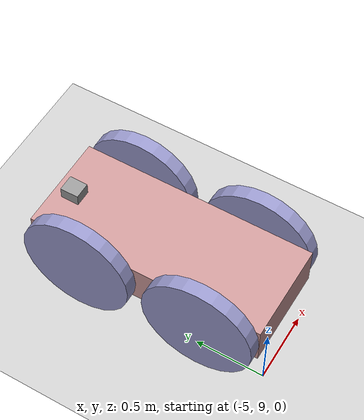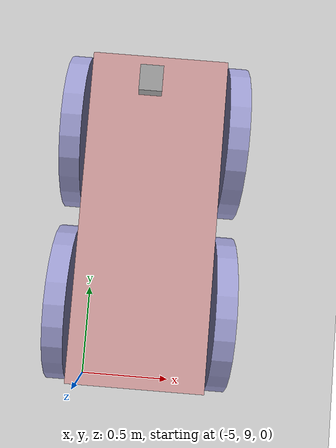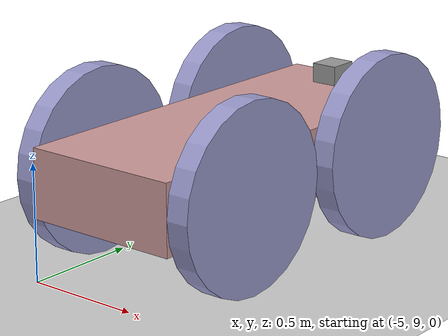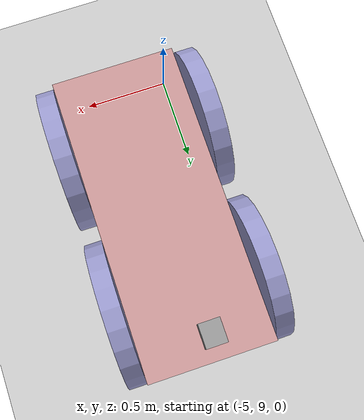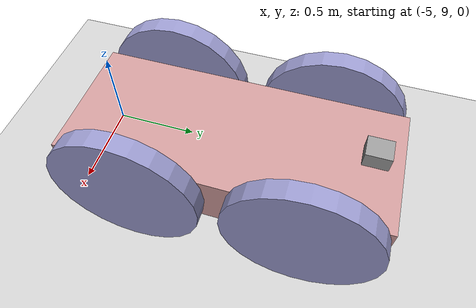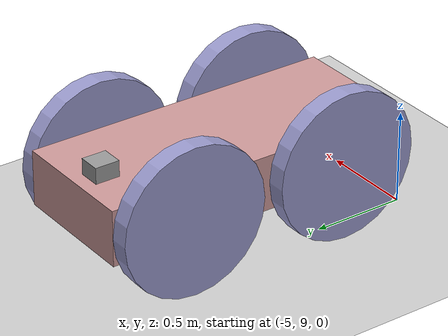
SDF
<sdf version="1.6">
 <world name="default">
  <model name="ground_plane">
   <static>1</static>
   <link name="link">
    <collision name="collision">
     <geometry><plane><normal>0 0 1</normal><size>100 100</size></plane></geometry>
     <surface>
      <contact><collide_bitmask>65535</collide_bitmask></contact>
      <friction><ode><mu>100</mu><mu2>50</mu2></ode></friction>
     </surface>
    </collision>
    <visual name="visual">
     <cast_shadows>0</cast_shadows>
     <geometry><plane><normal>0 0 1</normal><size>100 100</size></plane></geometry>
     <material>
      <script><uri>file://media/materials/scripts/gazebo.material</uri><name>Gazebo/Grey</name></script>
     </material>
    </visual>
   </link>
  </model>
  <model name="Robot">
   <link name="link_0">
    <pose>0.00675 -0.118334 -0.032195 0 -0 0</pose>
    <inertial>
     <mass>0.306123</mass>
     <inertia>
      <ixx>0.0616903</ixx>
      <ixy>0</ixy>
      <ixz>0</ixz>
      <iyy>0.0154129</iyy>
      <iyz>0</iyz>
      <izz>0.0732404</izz>
     </inertia>
    </inertial>
    <visual name="visual">
     <geometry><box><size>0.7 1.7 0.3</size></box></geometry>
     <material>
      <lighting>1</lighting>
      <script><uri>file://media/materials/scripts/gazebo.material</uri><name>Gazebo/Grey</name></script>
      <shader type="pixel"><normal_map>__default__</normal_map></shader>
      <ambient>0.4 0.2 0.2 1</ambient>
      <diffuse>0.8 0.6 0.6 1</diffuse>
      <specular>0.11 0 0 1</specular>
      <emissive>0 0 0 1</emissive>
     </material>
    </visual>
    <collision name="collision">
     <geometry><box><size>0.7 1.7 0.3</size></box></geometry>
     <surface>
      <friction>
       <ode><mu>1</mu><mu2>1</mu2><fdir1>0 0 0</fdir1><slip1>0</slip1><slip2>0</slip2></ode>
       <torsional>
        <coefficient>1</coefficient>
        <patch_radius>0</patch_radius>
        <surface_radius>0</surface_radius>
        <use_patch_radius>1</use_patch_radius>
        <ode><slip>0</slip></ode>
       </torsional>
      </friction>
      <bounce><restitution_coefficient>0</restitution_coefficient><threshold>1e+06</threshold></bounce>
      <contact>
       <collide_without_contact>0</collide_without_contact>
       <collide_without_contact_bitmask>1</collide_without_contact_bitmask>
       <collide_bitmask>1</collide_bitmask>
       <ode>
        <soft_cfm>0</soft_cfm>
        <soft_erp>0.2</soft_erp>
        <kp>1e+13</kp>
        <kd>1</kd>
        <max_vel>0.01</max_vel>
        <min_depth>0</min_depth>
       </ode>
       <bullet>
        <split_impulse>1</split_impulse>
        <split_impulse_penetration_threshold>-0.01</split_impulse_penetration_threshold>
        <soft_cfm>0</soft_cfm>
        <soft_erp>0.2</soft_erp>
        <kp>1e+13</kp>
        <kd>1</kd>
       </bullet>
      </contact>
     </surface>
    </collision>
   </link>
   <link name="link_1_clone">
    <pose>-0.393289 -0.568334 -0.032195 0 1.5707 0</pose>
    <inertial>
     <mass>1</mass>
     <inertia><ixx>0.145833</ixx><ixy>0</ixy><ixz>0</ixz><iyy>0.145833</iyy><iyz>0</iyz><izz>0.125</izz></inertia>
    </inertial>
    <visual name="visual">
     <geometry><cylinder><radius>0.4</radius><length>0.1</length></cylinder></geometry>
     <material>
      <lighting>1</lighting>
      <script><uri>file://media/materials/scripts/gazebo.material</uri><name>Gazebo/Grey</name></script>
      <shader type="pixel"><normal_map>__default__</normal_map></shader>
      <ambient>0.2 0.2 0.4 1</ambient>
      <diffuse>0.6 0.6 0.8 1</diffuse>
      <specular>0 0 0.11 1</specular>
      <emissive>0 0 0 1</emissive>
     </material>
    </visual>
    <collision name="collision">
     <geometry><cylinder><radius>0.4</radius><length>0.1</length></cylinder></geometry>
     <surface>
      <friction>
       <ode><mu>1</mu><mu2>1</mu2><fdir1>0 0 0</fdir1><slip1>0</slip1><slip2>0</slip2></ode>
       <torsional>
        <coefficient>1</coefficient>
        <patch_radius>0</patch_radius>
        <surface_radius>0</surface_radius>
        <use_patch_radius>1</use_patch_radius>
        <ode><slip>0</slip></ode>
       </torsional>
      </friction>
      <bounce><restitution_coefficient>0</restitution_coefficient><threshold>1e+06</threshold></bounce>
      <contact>
       <collide_without_contact>0</collide_without_contact>
       <collide_without_contact_bitmask>1</collide_without_contact_bitmask>
       <collide_bitmask>1</collide_bitmask>
       <ode>
        <soft_cfm>0</soft_cfm>
        <soft_erp>0.2</soft_erp>
        <kp>1e+13</kp>
        <kd>1</kd>
        <max_vel>0.01</max_vel>
        <min_depth>0</min_depth>
       </ode>
       <bullet>
        <split_impulse>1</split_impulse>
        <split_impulse_penetration_threshold>-0.01</split_impulse_penetration_threshold>
        <soft_cfm>0</soft_cfm>
        <soft_erp>0.2</soft_erp>
        <kp>1e+13</kp>
        <kd>1</kd>
       </bullet>
      </contact>
     </surface>
    </collision>
   </link>
   <link name="link_1_clone_0">
    <pose>-0.393289 0.331666 -0.032195 0 1.5707 0</pose>
    <inertial>
     <mass>1</mass>
     <inertia><ixx>0.145833</ixx><ixy>0</ixy><ixz>0</ixz><iyy>0.145833</iyy><iyz>0</iyz><izz>0.125</izz></inertia>
    </inertial>
    <visual name="visual">
     <geometry><cylinder><radius>0.4</radius><length>0.1</length></cylinder></geometry>
     <material>
      <lighting>1</lighting>
      <script><uri>file://media/materials/scripts/gazebo.material</uri><name>Gazebo/Grey</name></script>
      <shader type="pixel"><normal_map>__default__</normal_map></shader>
      <ambient>0.2 0.2 0.4 1</ambient>
      <diffuse>0.6 0.6 0.8 1</diffuse>
      <specular>0 0 0.11 1</specular>
      <emissive>0 0 0 1</emissive>
     </material>
    </visual>
    <collision name="collision">
     <geometry><cylinder><radius>0.4</radius><length>0.1</length></cylinder></geometry>
     <surface>
      <friction>
       <ode><mu>1</mu><mu2>1</mu2><fdir1>0 0 0</fdir1><slip1>0</slip1><slip2>0</slip2></ode>
       <torsional>
        <coefficient>1</coefficient>
        <patch_radius>0</patch_radius>
        <surface_radius>0</surface_radius>
        <use_patch_radius>1</use_patch_radius>
        <ode><slip>0</slip></ode>
       </torsional>
      </friction>
      <bounce><restitution_coefficient>0</restitution_coefficient><threshold>1e+06</threshold></bounce>
      <contact>
       <collide_without_contact>0</collide_without_contact>
       <collide_without_contact_bitmask>1</collide_without_contact_bitmask>
       <collide_bitmask>1</collide_bitmask>
       <ode>
        <soft_cfm>0</soft_cfm>
        <soft_erp>0.2</soft_erp>
        <kp>1e+13</kp>
        <kd>1</kd>
        <max_vel>0.01</max_vel>
        <min_depth>0</min_depth>
       </ode>
       <bullet>
        <split_impulse>1</split_impulse>
        <split_impulse_penetration_threshold>-0.01</split_impulse_penetration_threshold>
        <soft_cfm>0</soft_cfm>
        <soft_erp>0.2</soft_erp>
        <kp>1e+13</kp>
        <kd>1</kd>
       </bullet>
      </contact>
     </surface>
    </collision>
   </link>
   <link name="link_1_clone_1">
    <pose>0.406789 -0.568334 -0.032195 0 1.5707 0</pose>
    <inertial>
     <mass>1</mass>
     <inertia><ixx>0.145833</ixx><ixy>0</ixy><ixz>0</ixz><iyy>0.145833</iyy><iyz>0</iyz><izz>0.125</izz></inertia>
    </inertial>
    <visual name="visual">
     <geometry><cylinder><radius>0.4</radius><length>0.1</length></cylinder></geometry>
     <material>
      <lighting>1</lighting>
      <script><uri>file://media/materials/scripts/gazebo.material</uri><name>Gazebo/Grey</name></script>
      <shader type="pixel"><normal_map>__default__</normal_map></shader>
      <ambient>0.2 0.2 0.4 1</ambient>
      <diffuse>0.6 0.6 0.8 1</diffuse>
      <specular>0 0 0.11 1</specular>
      <emissive>0 0 0 1</emissive>
     </material>
    </visual>
    <collision name="collision">
     <geometry><cylinder><radius>0.4</radius><length>0.1</length></cylinder></geometry>
     <surface>
      <friction>
       <ode><mu>1</mu><mu2>1</mu2><fdir1>0 0 0</fdir1><slip1>0</slip1><slip2>0</slip2></ode>
       <torsional>
        <coefficient>1</coefficient>
        <patch_radius>0</patch_radius>
        <surface_radius>0</surface_radius>
        <use_patch_radius>1</use_patch_radius>
        <ode><slip>0</slip></ode>
       </torsional>
      </friction>
      <bounce><restitution_coefficient>0</restitution_coefficient><threshold>1e+06</threshold></bounce>
      <contact>
       <collide_without_contact>0</collide_without_contact>
       <collide_without_contact_bitmask>1</collide_without_contact_bitmask>
       <collide_bitmask>1</collide_bitmask>
       <ode>
        <soft_cfm>0</soft_cfm>
        <soft_erp>0.2</soft_erp>
        <kp>1e+13</kp>
        <kd>1</kd>
        <max_vel>0.01</max_vel>
        <min_depth>0</min_depth>
       </ode>
       <bullet>
        <split_impulse>1</split_impulse>
        <split_impulse_penetration_threshold>-0.01</split_impulse_penetration_threshold>
        <soft_cfm>0</soft_cfm>
        <soft_erp>0.2</soft_erp>
        <kp>1e+13</kp>
        <kd>1</kd>
       </bullet>
      </contact>
     </surface>
    </collision>
   </link>
   <link name="link_1_clone_2">
    <pose>0.406789 0.331666 -0.032195 0 1.5707 0</pose>
    <inertial>
     <mass>1</mass>
     <inertia><ixx>0.145833</ixx><ixy>0</ixy><ixz>0</ixz><iyy>0.145833</iyy><iyz>0</iyz><izz>0.125</izz></inertia>
    </inertial>
    <visual name="visual">
     <geometry><cylinder><radius>0.4</radius><length>0.1</length></cylinder></geometry>
     <material>
      <lighting>1</lighting>
      <script><uri>file://media/materials/scripts/gazebo.material</uri><name>Gazebo/Grey</name></script>
      <shader type="pixel"><normal_map>__default__</normal_map></shader>
      <ambient>0.2 0.2 0.4 1</ambient>
      <diffuse>0.6 0.6 0.8 1</diffuse>
      <specular>0 0 0.11 1</specular>
      <emissive>0 0 0 1</emissive>
     </material>
    </visual>
    <collision name="collision">
     <geometry><cylinder><radius>0.4</radius><length>0.1</length></cylinder></geometry>
     <surface>
      <friction>
       <ode><mu>1</mu><mu2>1</mu2><fdir1>0 0 0</fdir1><slip1>0</slip1><slip2>0</slip2></ode>
       <torsional>
        <coefficient>1</coefficient>
        <patch_radius>0</patch_radius>
        <surface_radius>0</surface_radius>
        <use_patch_radius>1</use_patch_radius>
        <ode><slip>0</slip></ode>
       </torsional>
      </friction>
      <bounce><restitution_coefficient>0</restitution_coefficient><threshold>1e+06</threshold></bounce>
      <contact>
       <collide_without_contact>0</collide_without_contact>
       <collide_without_contact_bitmask>1</collide_without_contact_bitmask>
       <collide_bitmask>1</collide_bitmask>
       <ode>
        <soft_cfm>0</soft_cfm>
        <soft_erp>0.2</soft_erp>
        <kp>1e+13</kp>
        <kd>1</kd>
        <max_vel>0.01</max_vel>
        <min_depth>0</min_depth>
       </ode>
       <bullet>
        <split_impulse>1</split_impulse>
        <split_impulse_penetration_threshold>-0.01</split_impulse_penetration_threshold>
        <soft_cfm>0</soft_cfm>
        <soft_erp>0.2</soft_erp>
        <kp>1e+13</kp>
        <kd>1</kd>
       </bullet>
      </contact>
     </surface>
    </collision>
   </link>
   <link name="link_2">
    <pose>-0.033751 0.591666 0.160974 0 -0 0</pose>
    <inertial>
     <mass>0.00134124</mass>
     <inertia>
      <ixx>2.76975e-06</ixx>
      <ixy>0</ixy>
      <ixz>0</ixz>
      <iyy>2.38931e-06</iyy>
      <iyz>0</iyz>
      <izz>3.49279e-06</izz>
     </inertia>
    </inertial>
    <visual name="visual">
     <geometry><box><size>0.117996 0.131631 0.086336</size></box></geometry>
     <material>
      <lighting>1</lighting>
      <script><uri>file://media/materials/scripts/gazebo.material</uri><name>Gazebo/Grey</name></script>
      <shader type="pixel"/>
      <ambient>0.3 0.3 0.3 1</ambient>
      <diffuse>0.7 0.7 0.7 1</diffuse>
      <specular>0.01 0.01 0.01 1</specular>
      <emissive>0 0 0 1</emissive>
     </material>
    </visual>
    <collision name="collision">
     <geometry><box><size>0.117996 0.131631 0.086336</size></box></geometry>
     <surface>
      <friction>
       <ode><mu>1</mu><mu2>1</mu2><fdir1>0 0 0</fdir1><slip1>0</slip1><slip2>0</slip2></ode>
       <torsional>
        <coefficient>1</coefficient>
        <patch_radius>0</patch_radius>
        <surface_radius>0</surface_radius>
        <use_patch_radius>1</use_patch_radius>
        <ode><slip>0</slip></ode>
       </torsional>
      </friction>
      <bounce><restitution_coefficient>0</restitution_coefficient><threshold>1e+06</threshold></bounce>
      <contact>
       <collide_without_contact>0</collide_without_contact>
       <collide_without_contact_bitmask>1</collide_without_contact_bitmask>
       <collide_bitmask>1</collide_bitmask>
       <ode>
        <soft_cfm>0</soft_cfm>
        <soft_erp>0.2</soft_erp>
        <kp>1e+13</kp>
        <kd>1</kd>
        <max_vel>0.01</max_vel>
        <min_depth>0</min_depth>
       </ode>
       <bullet>
        <split_impulse>1</split_impulse>
        <split_impulse_penetration_threshold>-0.01</split_impulse_penetration_threshold>
        <soft_cfm>0</soft_cfm>
        <soft_erp>0.2</soft_erp>
        <kp>1e+13</kp>
        <kd>1</kd>
       </bullet>
      </contact>
     </surface>
    </collision>
   </link>
   <joint name="link_0_JOINT_2" type="revolute">
    <parent>link_0</parent>
    <child>link_1_clone_0</child>
    <axis>
     <xyz>0 0 1</xyz>
     <use_parent_model_frame>0</use_parent_model_frame>
     <limit>
      <lower>-1.79769e+308</lower>
      <upper>1.79769e+308</upper>
      <effort>-1</effort>
      <velocity>-1</velocity>
     </limit>
     <dynamics>
      <spring_reference>0</spring_reference>
      <spring_stiffness>0</spring_stiffness>
      <damping>0</damping>
     </dynamics>
    </axis>
    <physics>
     <ode><limit><cfm>0</cfm><erp>0.2</erp></limit><suspension><cfm>0</cfm><erp>0.2</erp></suspension></ode>
    </physics>
   </joint>
   <joint name="link_0_JOINT_3" type="revolute">
    <parent>link_0</parent>
    <child>link_1_clone</child>
    <axis>
     <xyz>0 0 1</xyz>
     <use_parent_model_frame>0</use_parent_model_frame>
     <limit>
      <lower>-1.79769e+308</lower>
      <upper>1.79769e+308</upper>
      <effort>-1</effort>
      <velocity>-1</velocity>
     </limit>
     <dynamics>
      <spring_reference>0</spring_reference>
      <spring_stiffness>0</spring_stiffness>
      <damping>0</damping>
     </dynamics>
    </axis>
    <physics>
     <ode><limit><cfm>0</cfm><erp>0.2</erp></limit><suspension><cfm>0</cfm><erp>0.2</erp></suspension></ode>
    </physics>
   </joint>
   <joint name="link_0_JOINT_4" type="revolute">
    <parent>link_0</parent>
    <child>link_1_clone_2</child>
    <axis>
     <xyz>0 0 1</xyz>
     <use_parent_model_frame>0</use_parent_model_frame>
     <limit>
      <lower>-1.79769e+308</lower>
      <upper>1.79769e+308</upper>
      <effort>-1</effort>
      <velocity>-1</velocity>
     </limit>
     <dynamics>
      <spring_reference>0</spring_reference>
      <spring_stiffness>0</spring_stiffness>
      <damping>0</damping>
     </dynamics>
    </axis>
    <physics>
     <ode><limit><cfm>0</cfm><erp>0.2</erp></limit><suspension><cfm>0</cfm><erp>0.2</erp></suspension></ode>
    </physics>
   </joint>
   <joint name="link_0_JOINT_5" type="revolute">
    <parent>link_0</parent>
    <child>link_1_clone_1</child>
    <axis>
     <xyz>0 0 1</xyz>
     <use_parent_model_frame>0</use_parent_model_frame>
     <limit>
      <lower>-1.79769e+308</lower>
      <upper>1.79769e+308</upper>
      <effort>-1</effort>
      <velocity>-1</velocity>
     </limit>
     <dynamics>
      <spring_reference>0</spring_reference>
      <spring_stiffness>0</spring_stiffness>
      <damping>0</damping>
     </dynamics>
    </axis>
    <physics>
     <ode><limit><cfm>0</cfm><erp>0.2</erp></limit><suspension><cfm>0</cfm><erp>0.2</erp></suspension></ode>
    </physics>
   </joint>
   <joint name="link_0_JOINT_6" type="fixed">
    <parent>link_0</parent>
    <child>link_2</child>
    <physics>
     <ode><limit><cfm>0</cfm><erp>0.2</erp></limit><suspension><cfm>0</cfm><erp>0.2</erp></suspension></ode>
    </physics>
   </joint>
   <static>0</static>
   <pose>-4.69108 10.0053 0.432198 1e-06 3e-06 -1.6e-05</pose>
  </model>
 </world>
</sdf>
